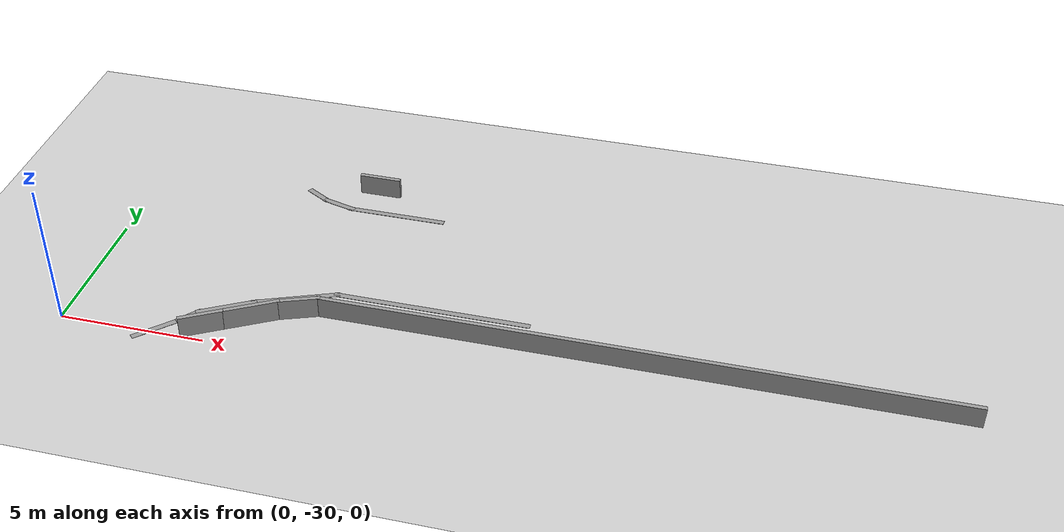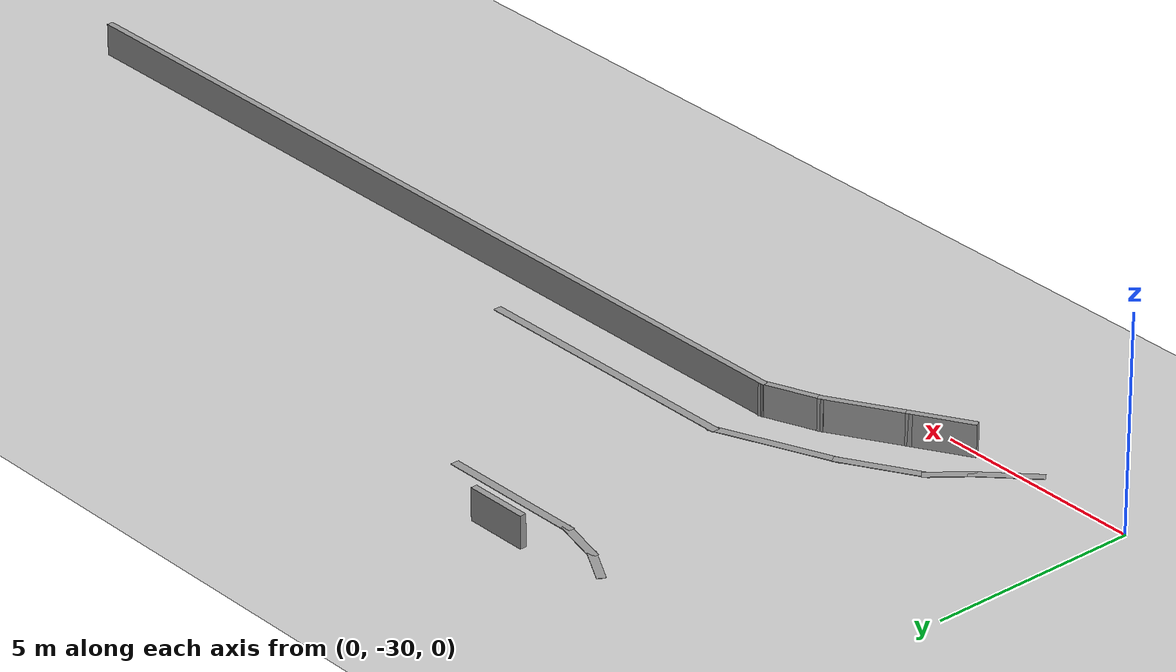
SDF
<sdf version="1.6">
 <world name="default">
  <model name="ground_plane">
   <static>1</static>
   <link name="link">
    <collision name="collision">
     <geometry><plane><normal>0 0 1</normal><size>100 100</size></plane></geometry>
     <surface>
      <contact><collide_bitmask>65535</collide_bitmask></contact>
      <friction><ode><mu>100</mu><mu2>50</mu2></ode></friction>
     </surface>
    </collision>
    <visual name="visual">
     <cast_shadows>0</cast_shadows>
     <geometry><plane><normal>0 0 1</normal><size>100 100</size></plane></geometry>
     <material>
      <script><uri>file://media/materials/scripts/gazebo.material</uri><name>Gazebo/Grey</name></script>
     </material>
    </visual>
   </link>
  </model>
  <model name="GercekDuvarSeritKoyu1">
   <link name="Wall_122">
    <pose>-26.9459 -40.9826 0 0 0 -1.5708</pose>
    <inertial>
     <mass>1</mass>
     <inertia><ixx>1</ixx><ixy>0</ixy><ixz>0</ixz><iyy>1</iyy><iyz>0</iyz><izz>1</izz></inertia>
    </inertial>
    <visual name="Wall_122_Visual">
     <pose>0 0 0.375 0 -0 0</pose>
     <geometry><box><size>21.4999 0.15 0.75</size></box></geometry>
     <material>
      <script><uri>file://media/materials/scripts/gazebo.material</uri><name>Gazebo/Grey</name></script>
      <ambient>0.5 0.5 0.5 1</ambient>
      <shader type="pixel"><normal_map>__default__</normal_map></shader>
      <diffuse>0.7 0.7 0.7 1</diffuse>
      <specular>0.01 0.01 0.01 1</specular>
      <emissive>0 0 0 1</emissive>
     </material>
     <meta><layer>0</layer></meta>
    </visual>
    <collision name="Wall_122_Collision">
     <pose>0 0 0.375 0 -0 0</pose>
     <geometry><box><size>21.4999 0.15 0.75</size></box></geometry>
     <surface>
      <friction>
       <ode><mu>1</mu><mu2>1</mu2><fdir1>0 0 0</fdir1><slip1>0</slip1><slip2>0</slip2></ode>
       <torsional>
        <coefficient>1</coefficient>
        <patch_radius>0</patch_radius>
        <surface_radius>0</surface_radius>
        <use_patch_radius>1</use_patch_radius>
        <ode><slip>0</slip></ode>
       </torsional>
      </friction>
      <bounce><restitution_coefficient>0</restitution_coefficient><threshold>1e+06</threshold></bounce>
      <contact>
       <collide_without_contact>0</collide_without_contact>
       <collide_without_contact_bitmask>1</collide_without_contact_bitmask>
       <collide_bitmask>1</collide_bitmask>
       <ode>
        <soft_cfm>0</soft_cfm>
        <soft_erp>0.2</soft_erp>
        <kp>1e+13</kp>
        <kd>1</kd>
        <max_vel>0.01</max_vel>
        <min_depth>0</min_depth>
       </ode>
       <bullet>
        <split_impulse>1</split_impulse>
        <split_impulse_penetration_threshold>-0.01</split_impulse_penetration_threshold>
        <soft_cfm>0</soft_cfm>
        <soft_erp>0.2</soft_erp>
        <kp>1e+13</kp>
        <kd>1</kd>
       </bullet>
      </contact>
     </surface>
    </collision>
   </link>
   <link name="Wall_126">
    <pose>-25.2044 -55.0721 0 0 -0 2.09444</pose>
    <inertial>
     <mass>1</mass>
     <inertia><ixx>1</ixx><ixy>0</ixy><ixz>0</ixz><iyy>1</iyy><iyz>0</iyz><izz>1</izz></inertia>
    </inertial>
    <visual name="Wall_126_Visual">
     <pose>0 0 0.375 0 -0 0</pose>
     <geometry><box><size>1.5 0.15 0.75</size></box></geometry>
     <material>
      <script><uri>file://media/materials/scripts/gazebo.material</uri><name>Gazebo/Grey</name></script>
      <ambient>0.5 0.5 0.5 1</ambient>
      <shader type="pixel"><normal_map>__default__</normal_map></shader>
      <diffuse>0.7 0.7 0.7 1</diffuse>
      <specular>0.01 0.01 0.01 1</specular>
      <emissive>0 0 0 1</emissive>
     </material>
     <meta><layer>0</layer></meta>
    </visual>
    <collision name="Wall_126_Collision">
     <pose>0 0 0.375 0 -0 0</pose>
     <geometry><box><size>1.5 0.15 0.75</size></box></geometry>
     <surface>
      <friction>
       <ode><mu>1</mu><mu2>1</mu2><fdir1>0 0 0</fdir1><slip1>0</slip1><slip2>0</slip2></ode>
       <torsional>
        <coefficient>1</coefficient>
        <patch_radius>0</patch_radius>
        <surface_radius>0</surface_radius>
        <use_patch_radius>1</use_patch_radius>
        <ode><slip>0</slip></ode>
       </torsional>
      </friction>
      <bounce><restitution_coefficient>0</restitution_coefficient><threshold>1e+06</threshold></bounce>
      <contact>
       <collide_without_contact>0</collide_without_contact>
       <collide_without_contact_bitmask>1</collide_without_contact_bitmask>
       <collide_bitmask>1</collide_bitmask>
       <ode>
        <soft_cfm>0</soft_cfm>
        <soft_erp>0.2</soft_erp>
        <kp>1e+13</kp>
        <kd>1</kd>
        <max_vel>0.01</max_vel>
        <min_depth>0</min_depth>
       </ode>
       <bullet>
        <split_impulse>1</split_impulse>
        <split_impulse_penetration_threshold>-0.01</split_impulse_penetration_threshold>
        <soft_cfm>0</soft_cfm>
        <soft_erp>0.2</soft_erp>
        <kp>1e+13</kp>
        <kd>1</kd>
       </bullet>
      </contact>
     </surface>
    </collision>
   </link>
   <link name="Wall_127">
    <pose>-26.0044 -53.6861 0 0 -0 2.09416</pose>
    <inertial>
     <mass>1</mass>
     <inertia><ixx>1</ixx><ixy>0</ixy><ixz>0</ixz><iyy>1</iyy><iyz>0</iyz><izz>1</izz></inertia>
    </inertial>
    <visual name="Wall_127_Visual">
     <pose>0 0 0.375 0 -0 0</pose>
     <geometry><box><size>2 0.15 0.75</size></box></geometry>
     <material>
      <script><uri>file://media/materials/scripts/gazebo.material</uri><name>Gazebo/Grey</name></script>
      <ambient>0.5 0.5 0.5 1</ambient>
      <shader type="pixel"><normal_map>__default__</normal_map></shader>
      <diffuse>0.7 0.7 0.7 1</diffuse>
      <specular>0.01 0.01 0.01 1</specular>
      <emissive>0 0 0 1</emissive>
     </material>
     <meta><layer>0</layer></meta>
    </visual>
    <collision name="Wall_127_Collision">
     <pose>0 0 0.375 0 -0 0</pose>
     <geometry><box><size>2 0.15 0.75</size></box></geometry>
     <surface>
      <friction>
       <ode><mu>1</mu><mu2>1</mu2><fdir1>0 0 0</fdir1><slip1>0</slip1><slip2>0</slip2></ode>
       <torsional>
        <coefficient>1</coefficient>
        <patch_radius>0</patch_radius>
        <surface_radius>0</surface_radius>
        <use_patch_radius>1</use_patch_radius>
        <ode><slip>0</slip></ode>
       </torsional>
      </friction>
      <bounce><restitution_coefficient>0</restitution_coefficient><threshold>1e+06</threshold></bounce>
      <contact>
       <collide_without_contact>0</collide_without_contact>
       <collide_without_contact_bitmask>1</collide_without_contact_bitmask>
       <collide_bitmask>1</collide_bitmask>
       <ode>
        <soft_cfm>0</soft_cfm>
        <soft_erp>0.2</soft_erp>
        <kp>1e+13</kp>
        <kd>1</kd>
        <max_vel>0.01</max_vel>
        <min_depth>0</min_depth>
       </ode>
       <bullet>
        <split_impulse>1</split_impulse>
        <split_impulse_penetration_threshold>-0.01</split_impulse_penetration_threshold>
        <soft_cfm>0</soft_cfm>
        <soft_erp>0.2</soft_erp>
        <kp>1e+13</kp>
        <kd>1</kd>
       </bullet>
      </contact>
     </surface>
    </collision>
   </link>
   <link name="Wall_128">
    <pose>-26.7064 -52.2711 0 0 -0 1.94298</pose>
    <inertial>
     <mass>1</mass>
     <inertia><ixx>1</ixx><ixy>0</ixy><ixz>0</ixz><iyy>1</iyy><iyz>0</iyz><izz>1</izz></inertia>
    </inertial>
    <visual name="Wall_128_Visual">
     <pose>0 0 0.375 0 -0 0</pose>
     <geometry><box><size>1.46748 0.15 0.75</size></box></geometry>
     <material>
      <script><uri>file://media/materials/scripts/gazebo.material</uri><name>Gazebo/Grey</name></script>
      <ambient>0.5 0.5 0.5 1</ambient>
      <shader type="pixel"><normal_map>__default__</normal_map></shader>
      <diffuse>0.7 0.7 0.7 1</diffuse>
      <specular>0.01 0.01 0.01 1</specular>
      <emissive>0 0 0 1</emissive>
     </material>
     <meta><layer>0</layer></meta>
    </visual>
    <collision name="Wall_128_Collision">
     <pose>0 0 0.375 0 -0 0</pose>
     <geometry><box><size>1.46748 0.15 0.75</size></box></geometry>
     <surface>
      <friction>
       <ode><mu>1</mu><mu2>1</mu2><fdir1>0 0 0</fdir1><slip1>0</slip1><slip2>0</slip2></ode>
       <torsional>
        <coefficient>1</coefficient>
        <patch_radius>0</patch_radius>
        <surface_radius>0</surface_radius>
        <use_patch_radius>1</use_patch_radius>
        <ode><slip>0</slip></ode>
       </torsional>
      </friction>
      <bounce><restitution_coefficient>0</restitution_coefficient><threshold>1e+06</threshold></bounce>
      <contact>
       <collide_without_contact>0</collide_without_contact>
       <collide_without_contact_bitmask>1</collide_without_contact_bitmask>
       <collide_bitmask>1</collide_bitmask>
       <ode>
        <soft_cfm>0</soft_cfm>
        <soft_erp>0.2</soft_erp>
        <kp>1e+13</kp>
        <kd>1</kd>
        <max_vel>0.01</max_vel>
        <min_depth>0</min_depth>
       </ode>
       <bullet>
        <split_impulse>1</split_impulse>
        <split_impulse_penetration_threshold>-0.01</split_impulse_penetration_threshold>
        <soft_cfm>0</soft_cfm>
        <soft_erp>0.2</soft_erp>
        <kp>1e+13</kp>
        <kd>1</kd>
       </bullet>
      </contact>
     </surface>
    </collision>
   </link>
   <link name="Wall_342">
    <pose>-33.3914 -53.9376 0 0 -0 1.04713</pose>
    <visual name="Wall_342_Visual">
     <pose>0 0 0.005 0 -0 0</pose>
     <geometry><box><size>1.05051 0.2 0.01</size></box></geometry>
     <material>
      <script><uri>file://media/materials/scripts/gazebo.material</uri><name>Gazebo/Grey</name></script>
      <ambient>1 1 1 1</ambient>
      <shader type="pixel"/>
     </material>
     <meta><layer>0</layer></meta>
    </visual>
    <collision name="Wall_342_Collision">
     <pose>0 0 0.005 0 -0 0</pose>
     <geometry><box><size>1.05051 0.2 0.01</size></box></geometry>
     <surface>
      <friction>
       <ode><mu>1</mu><mu2>1</mu2><fdir1>0 0 0</fdir1><slip1>0</slip1><slip2>0</slip2></ode>
       <torsional>
        <coefficient>1</coefficient>
        <patch_radius>0</patch_radius>
        <surface_radius>0</surface_radius>
        <use_patch_radius>1</use_patch_radius>
        <ode><slip>0</slip></ode>
       </torsional>
      </friction>
      <bounce><restitution_coefficient>0</restitution_coefficient><threshold>1e+06</threshold></bounce>
      <contact>
       <collide_without_contact>0</collide_without_contact>
       <collide_without_contact_bitmask>1</collide_without_contact_bitmask>
       <collide_bitmask>1</collide_bitmask>
       <ode>
        <soft_cfm>0</soft_cfm>
        <soft_erp>0.2</soft_erp>
        <kp>1e+13</kp>
        <kd>1</kd>
        <max_vel>0.01</max_vel>
        <min_depth>0</min_depth>
       </ode>
       <bullet>
        <split_impulse>1</split_impulse>
        <split_impulse_penetration_threshold>-0.01</split_impulse_penetration_threshold>
        <soft_cfm>0</soft_cfm>
        <soft_erp>0.2</soft_erp>
        <kp>1e+13</kp>
        <kd>1</kd>
       </bullet>
      </contact>
     </surface>
    </collision>
   </link>
   <link name="Wall_343">
    <pose>-33.0364 -53.0381 0 0 -0 1.30885</pose>
    <visual name="Wall_343_Visual">
     <pose>0 0 0.005 0 -0 0</pose>
     <geometry><box><size>1.30055 0.2 0.01</size></box></geometry>
     <material>
      <script><uri>file://media/materials/scripts/gazebo.material</uri><name>Gazebo/Grey</name></script>
      <ambient>1 1 1 1</ambient>
      <shader type="pixel"/>
     </material>
     <meta><layer>0</layer></meta>
    </visual>
    <collision name="Wall_343_Collision">
     <pose>0 0 0.005 0 -0 0</pose>
     <geometry><box><size>1.30055 0.2 0.01</size></box></geometry>
     <surface>
      <friction>
       <ode><mu>1</mu><mu2>1</mu2><fdir1>0 0 0</fdir1><slip1>0</slip1><slip2>0</slip2></ode>
       <torsional>
        <coefficient>1</coefficient>
        <patch_radius>0</patch_radius>
        <surface_radius>0</surface_radius>
        <use_patch_radius>1</use_patch_radius>
        <ode><slip>0</slip></ode>
       </torsional>
      </friction>
      <bounce><restitution_coefficient>0</restitution_coefficient><threshold>1e+06</threshold></bounce>
      <contact>
       <collide_without_contact>0</collide_without_contact>
       <collide_without_contact_bitmask>1</collide_without_contact_bitmask>
       <collide_bitmask>1</collide_bitmask>
       <ode>
        <soft_cfm>0</soft_cfm>
        <soft_erp>0.2</soft_erp>
        <kp>1e+13</kp>
        <kd>1</kd>
        <max_vel>0.01</max_vel>
        <min_depth>0</min_depth>
       </ode>
       <bullet>
        <split_impulse>1</split_impulse>
        <split_impulse_penetration_threshold>-0.01</split_impulse_penetration_threshold>
        <soft_cfm>0</soft_cfm>
        <soft_erp>0.2</soft_erp>
        <kp>1e+13</kp>
        <kd>1</kd>
       </bullet>
      </contact>
     </surface>
    </collision>
   </link>
   <link name="Wall_344">
    <pose>-32.8939 -50.8316 0 0 -0 1.5708</pose>
    <visual name="Wall_344_Visual">
     <pose>0 0 0.005 0 -0 0</pose>
     <geometry><box><size>3.54997 0.2 0.01</size></box></geometry>
     <material>
      <script><uri>file://media/materials/scripts/gazebo.material</uri><name>Gazebo/Grey</name></script>
      <ambient>1 1 1 1</ambient>
      <shader type="pixel"/>
     </material>
     <meta><layer>0</layer></meta>
    </visual>
    <collision name="Wall_344_Collision">
     <pose>0 0 0.005 0 -0 0</pose>
     <geometry><box><size>3.54997 0.2 0.01</size></box></geometry>
     <surface>
      <friction>
       <ode><mu>1</mu><mu2>1</mu2><fdir1>0 0 0</fdir1><slip1>0</slip1><slip2>0</slip2></ode>
       <torsional>
        <coefficient>1</coefficient>
        <patch_radius>0</patch_radius>
        <surface_radius>0</surface_radius>
        <use_patch_radius>1</use_patch_radius>
        <ode><slip>0</slip></ode>
       </torsional>
      </friction>
      <bounce><restitution_coefficient>0</restitution_coefficient><threshold>1e+06</threshold></bounce>
      <contact>
       <collide_without_contact>0</collide_without_contact>
       <collide_without_contact_bitmask>1</collide_without_contact_bitmask>
       <collide_bitmask>1</collide_bitmask>
       <ode>
        <soft_cfm>0</soft_cfm>
        <soft_erp>0.2</soft_erp>
        <kp>1e+13</kp>
        <kd>1</kd>
        <max_vel>0.01</max_vel>
        <min_depth>0</min_depth>
       </ode>
       <bullet>
        <split_impulse>1</split_impulse>
        <split_impulse_penetration_threshold>-0.01</split_impulse_penetration_threshold>
        <soft_cfm>0</soft_cfm>
        <soft_erp>0.2</soft_erp>
        <kp>1e+13</kp>
        <kd>1</kd>
       </bullet>
      </contact>
     </surface>
    </collision>
   </link>
   <link name="Wall_414">
    <pose>-28.0929 -48.1316 0 0 0 -1.5708</pose>
    <visual name="Wall_414_Visual">
     <pose>0 0 0.005 0 -0 0</pose>
     <geometry><box><size>6.80035 0.2 0.01</size></box></geometry>
     <material>
      <script><uri>file://media/materials/scripts/gazebo.material</uri><name>Gazebo/Grey</name></script>
      <ambient>1 1 1 1</ambient>
      <shader type="pixel"/>
     </material>
     <meta><layer>0</layer></meta>
    </visual>
    <collision name="Wall_414_Collision">
     <pose>0 0 0.005 0 -0 0</pose>
     <geometry><box><size>6.80035 0.2 0.01</size></box></geometry>
     <surface>
      <friction>
       <ode><mu>1</mu><mu2>1</mu2><fdir1>0 0 0</fdir1><slip1>0</slip1><slip2>0</slip2></ode>
       <torsional>
        <coefficient>1</coefficient>
        <patch_radius>0</patch_radius>
        <surface_radius>0</surface_radius>
        <use_patch_radius>1</use_patch_radius>
        <ode><slip>0</slip></ode>
       </torsional>
      </friction>
      <bounce><restitution_coefficient>0</restitution_coefficient><threshold>1e+06</threshold></bounce>
      <contact>
       <collide_without_contact>0</collide_without_contact>
       <collide_without_contact_bitmask>1</collide_without_contact_bitmask>
       <collide_bitmask>1</collide_bitmask>
       <ode>
        <soft_cfm>0</soft_cfm>
        <soft_erp>0.2</soft_erp>
        <kp>1e+13</kp>
        <kd>1</kd>
        <max_vel>0.01</max_vel>
        <min_depth>0</min_depth>
       </ode>
       <bullet>
        <split_impulse>1</split_impulse>
        <split_impulse_penetration_threshold>-0.01</split_impulse_penetration_threshold>
        <soft_cfm>0</soft_cfm>
        <soft_erp>0.2</soft_erp>
        <kp>1e+13</kp>
        <kd>1</kd>
       </bullet>
      </contact>
     </surface>
    </collision>
   </link>
   <link name="Wall_415">
    <pose>-27.5679 -52.7161 0 0 0 -1.1828</pose>
    <visual name="Wall_415_Visual">
     <pose>0 0 0.005 0 -0 0</pose>
     <geometry><box><size>2.97521 0.2 0.01</size></box></geometry>
     <material>
      <script><uri>file://media/materials/scripts/gazebo.material</uri><name>Gazebo/Grey</name></script>
      <ambient>1 1 1 1</ambient>
      <shader type="pixel"/>
     </material>
     <meta><layer>0</layer></meta>
    </visual>
    <collision name="Wall_415_Collision">
     <pose>0 0 0.005 0 -0 0</pose>
     <geometry><box><size>2.97521 0.2 0.01</size></box></geometry>
     <surface>
      <friction>
       <ode><mu>1</mu><mu2>1</mu2><fdir1>0 0 0</fdir1><slip1>0</slip1><slip2>0</slip2></ode>
       <torsional>
        <coefficient>1</coefficient>
        <patch_radius>0</patch_radius>
        <surface_radius>0</surface_radius>
        <use_patch_radius>1</use_patch_radius>
        <ode><slip>0</slip></ode>
       </torsional>
      </friction>
      <bounce><restitution_coefficient>0</restitution_coefficient><threshold>1e+06</threshold></bounce>
      <contact>
       <collide_without_contact>0</collide_without_contact>
       <collide_without_contact_bitmask>1</collide_without_contact_bitmask>
       <collide_bitmask>1</collide_bitmask>
       <ode>
        <soft_cfm>0</soft_cfm>
        <soft_erp>0.2</soft_erp>
        <kp>1e+13</kp>
        <kd>1</kd>
        <max_vel>0.01</max_vel>
        <min_depth>0</min_depth>
       </ode>
       <bullet>
        <split_impulse>1</split_impulse>
        <split_impulse_penetration_threshold>-0.01</split_impulse_penetration_threshold>
        <soft_cfm>0</soft_cfm>
        <soft_erp>0.2</soft_erp>
        <kp>1e+13</kp>
        <kd>1</kd>
       </bullet>
      </contact>
     </surface>
    </collision>
   </link>
   <link name="Wall_416">
    <pose>-26.5804 -54.8016 0 0 0 -1.04716</pose>
    <visual name="Wall_416_Visual">
     <pose>0 0 0.005 0 -0 0</pose>
     <geometry><box><size>2.04988 0.2 0.01</size></box></geometry>
     <material>
      <script><uri>file://media/materials/scripts/gazebo.material</uri><name>Gazebo/Grey</name></script>
      <ambient>1 1 1 1</ambient>
      <shader type="pixel"/>
     </material>
     <meta><layer>0</layer></meta>
    </visual>
    <collision name="Wall_416_Collision">
     <pose>0 0 0.005 0 -0 0</pose>
     <geometry><box><size>2.04988 0.2 0.01</size></box></geometry>
     <surface>
      <friction>
       <ode><mu>1</mu><mu2>1</mu2><fdir1>0 0 0</fdir1><slip1>0</slip1><slip2>0</slip2></ode>
       <torsional>
        <coefficient>1</coefficient>
        <patch_radius>0</patch_radius>
        <surface_radius>0</surface_radius>
        <use_patch_radius>1</use_patch_radius>
        <ode><slip>0</slip></ode>
       </torsional>
      </friction>
      <bounce><restitution_coefficient>0</restitution_coefficient><threshold>1e+06</threshold></bounce>
      <contact>
       <collide_without_contact>0</collide_without_contact>
       <collide_without_contact_bitmask>1</collide_without_contact_bitmask>
       <collide_bitmask>1</collide_bitmask>
       <ode>
        <soft_cfm>0</soft_cfm>
        <soft_erp>0.2</soft_erp>
        <kp>1e+13</kp>
        <kd>1</kd>
        <max_vel>0.01</max_vel>
        <min_depth>0</min_depth>
       </ode>
       <bullet>
        <split_impulse>1</split_impulse>
        <split_impulse_penetration_threshold>-0.01</split_impulse_penetration_threshold>
        <soft_cfm>0</soft_cfm>
        <soft_erp>0.2</soft_erp>
        <kp>1e+13</kp>
        <kd>1</kd>
       </bullet>
      </contact>
     </surface>
    </collision>
   </link>
   <link name="Wall_420">
    <pose>-24.9269 -56.6776 0 0 -0 2.34788</pose>
    <visual name="Wall_420_Visual">
     <pose>0 0 0.005 0 -0 0</pose>
     <geometry><box><size>1.56052 0.2 0.01</size></box></geometry>
     <material>
      <script><uri>file://media/materials/scripts/gazebo.material</uri><name>Gazebo/Grey</name></script>
      <ambient>1 1 1 1</ambient>
      <shader type="pixel"/>
     </material>
     <meta><layer>0</layer></meta>
    </visual>
    <collision name="Wall_420_Collision">
     <pose>0 0 0.005 0 -0 0</pose>
     <geometry><box><size>1.56052 0.2 0.01</size></box></geometry>
     <surface>
      <friction>
       <ode><mu>1</mu><mu2>1</mu2><fdir1>0 0 0</fdir1><slip1>0</slip1><slip2>0</slip2></ode>
       <torsional>
        <coefficient>1</coefficient>
        <patch_radius>0</patch_radius>
        <surface_radius>0</surface_radius>
        <use_patch_radius>1</use_patch_radius>
        <ode><slip>0</slip></ode>
       </torsional>
      </friction>
      <bounce><restitution_coefficient>0</restitution_coefficient><threshold>1e+06</threshold></bounce>
      <contact>
       <collide_without_contact>0</collide_without_contact>
       <collide_without_contact_bitmask>1</collide_without_contact_bitmask>
       <collide_bitmask>1</collide_bitmask>
       <ode>
        <soft_cfm>0</soft_cfm>
        <soft_erp>0.2</soft_erp>
        <kp>1e+13</kp>
        <kd>1</kd>
        <max_vel>0.01</max_vel>
        <min_depth>0</min_depth>
       </ode>
       <bullet>
        <split_impulse>1</split_impulse>
        <split_impulse_penetration_threshold>-0.01</split_impulse_penetration_threshold>
        <soft_cfm>0</soft_cfm>
        <soft_erp>0.2</soft_erp>
        <kp>1e+13</kp>
        <kd>1</kd>
       </bullet>
      </contact>
     </surface>
    </collision>
   </link>
   <link name="Wall_421">
    <pose>-25.7609 -55.8976 0 0 -0 2.451</pose>
    <visual name="Wall_421_Visual">
     <pose>0 0 0.005 0 -0 0</pose>
     <geometry><box><size>1.12623 0.2 0.01</size></box></geometry>
     <material>
      <script><uri>file://media/materials/scripts/gazebo.material</uri><name>Gazebo/Grey</name></script>
      <ambient>1 1 1 1</ambient>
      <shader type="pixel"/>
     </material>
     <meta><layer>0</layer></meta>
    </visual>
    <collision name="Wall_421_Collision">
     <pose>0 0 0.005 0 -0 0</pose>
     <geometry><box><size>1.12623 0.2 0.01</size></box></geometry>
     <surface>
      <friction>
       <ode><mu>1</mu><mu2>1</mu2><fdir1>0 0 0</fdir1><slip1>0</slip1><slip2>0</slip2></ode>
       <torsional>
        <coefficient>1</coefficient>
        <patch_radius>0</patch_radius>
        <surface_radius>0</surface_radius>
        <use_patch_radius>1</use_patch_radius>
        <ode><slip>0</slip></ode>
       </torsional>
      </friction>
      <bounce><restitution_coefficient>0</restitution_coefficient><threshold>1e+06</threshold></bounce>
      <contact>
       <collide_without_contact>0</collide_without_contact>
       <collide_without_contact_bitmask>1</collide_without_contact_bitmask>
       <collide_bitmask>1</collide_bitmask>
       <ode>
        <soft_cfm>0</soft_cfm>
        <soft_erp>0.2</soft_erp>
        <kp>1e+13</kp>
        <kd>1</kd>
        <max_vel>0.01</max_vel>
        <min_depth>0</min_depth>
       </ode>
       <bullet>
        <split_impulse>1</split_impulse>
        <split_impulse_penetration_threshold>-0.01</split_impulse_penetration_threshold>
        <soft_cfm>0</soft_cfm>
        <soft_erp>0.2</soft_erp>
        <kp>1e+13</kp>
        <kd>1</kd>
       </bullet>
      </contact>
     </surface>
    </collision>
   </link>
   <link name="Wall_77">
    <pose>-34.0419 -51.7611 0 0 0 -1.5708</pose>
    <inertial>
     <mass>1</mass>
     <inertia><ixx>1</ixx><ixy>0</ixy><ixz>0</ixz><iyy>1</iyy><iyz>0</iyz><izz>1</izz></inertia>
    </inertial>
    <visual name="Wall_77_Visual">
     <pose>0 0 0.375 0 -0 0</pose>
     <geometry><box><size>1.48872 0.15 0.75</size></box></geometry>
     <material>
      <script><uri>file://media/materials/scripts/gazebo.material</uri><name>Gazebo/Grey</name></script>
      <ambient>0.5 0.5 0.5 1</ambient>
      <shader type="pixel"><normal_map>__default__</normal_map></shader>
      <diffuse>0.7 0.7 0.7 1</diffuse>
      <specular>0.01 0.01 0.01 1</specular>
      <emissive>0 0 0 1</emissive>
     </material>
     <meta><layer>0</layer></meta>
    </visual>
    <collision name="Wall_77_Collision">
     <pose>0 0 0.375 0 -0 0</pose>
     <geometry><box><size>1.48872 0.15 0.75</size></box></geometry>
     <surface>
      <friction>
       <ode><mu>1</mu><mu2>1</mu2><fdir1>0 0 0</fdir1><slip1>0</slip1><slip2>0</slip2></ode>
       <torsional>
        <coefficient>1</coefficient>
        <patch_radius>0</patch_radius>
        <surface_radius>0</surface_radius>
        <use_patch_radius>1</use_patch_radius>
        <ode><slip>0</slip></ode>
       </torsional>
      </friction>
      <bounce><restitution_coefficient>0</restitution_coefficient><threshold>1e+06</threshold></bounce>
      <contact>
       <collide_without_contact>0</collide_without_contact>
       <collide_without_contact_bitmask>1</collide_without_contact_bitmask>
       <collide_bitmask>1</collide_bitmask>
       <ode>
        <soft_cfm>0</soft_cfm>
        <soft_erp>0.2</soft_erp>
        <kp>1e+13</kp>
        <kd>1</kd>
        <max_vel>0.01</max_vel>
        <min_depth>0</min_depth>
       </ode>
       <bullet>
        <split_impulse>1</split_impulse>
        <split_impulse_penetration_threshold>-0.01</split_impulse_penetration_threshold>
        <soft_cfm>0</soft_cfm>
        <soft_erp>0.2</soft_erp>
        <kp>1e+13</kp>
        <kd>1</kd>
       </bullet>
      </contact>
     </surface>
    </collision>
   </link>
   <static>1</static>
   <pose>59.9324 -54.7034 -0 0 0 -1.5695</pose>
  </model>
 </world>
</sdf>
